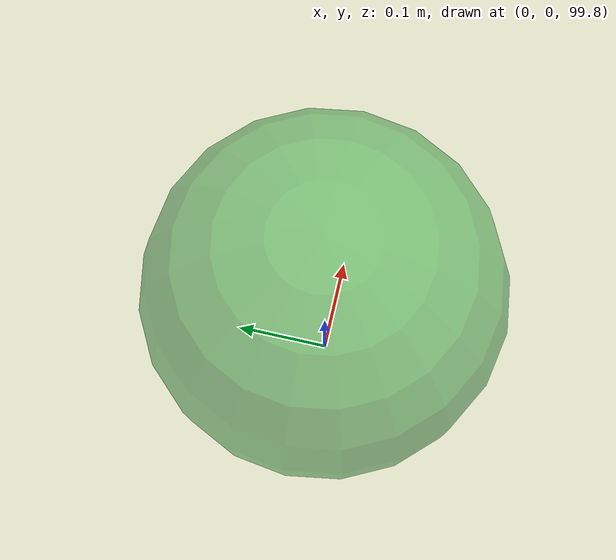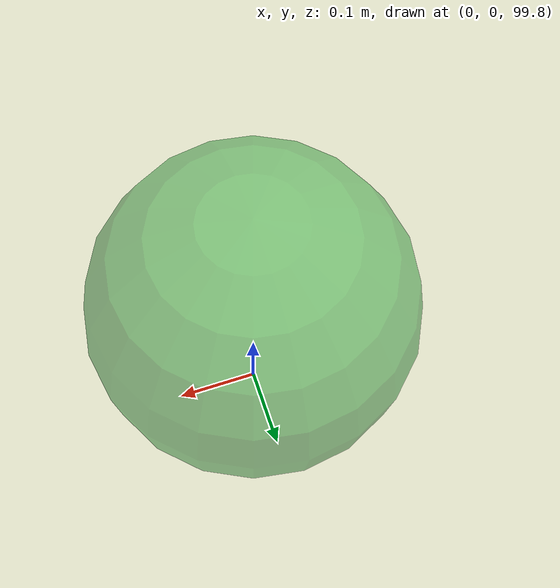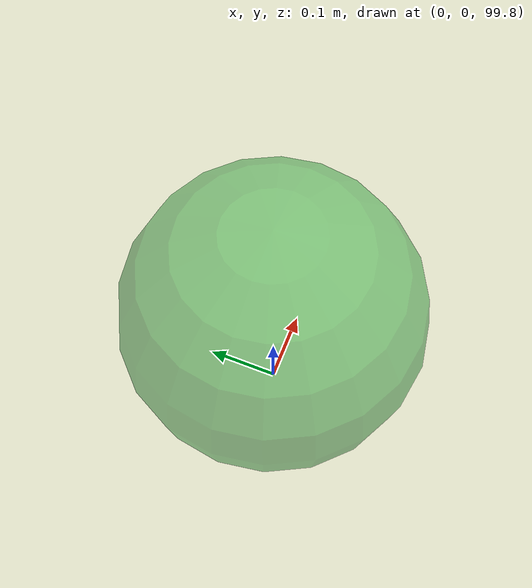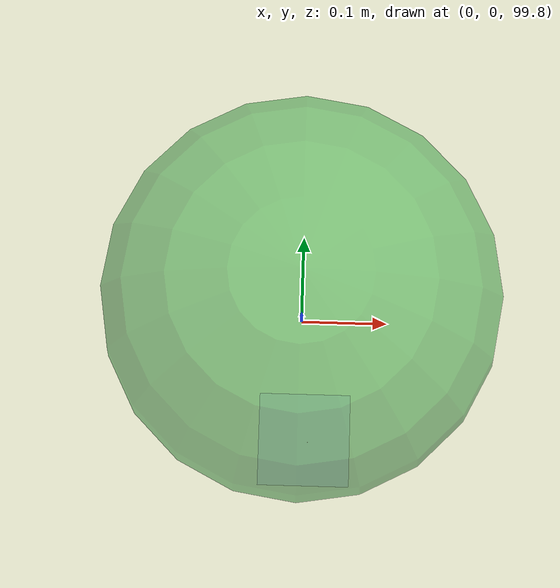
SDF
<sdf version="1.4">
 <world name="default">
  <include><uri>model://sun</uri><pose>0.0 -2 2 0.0 0.0 0.0</pose></include>
  <include>
   <uri>model://ground_plane</uri>
   <name>ground_plane</name>
   <pose>0.0 0.0 -0.001 0.0 0.0 0.0</pose>
  </include>
  <model name="wall_front">
   <static>true</static>
   <pose>0.40788 -0.041111 0.594525 0 0 0.452176</pose>
   <link name="link">
    <collision name="collision_wall_front">
     <geometry><box><size>0.01235 0.05025 0.07711</size></box></geometry>
    </collision>
   </link>
  </model>
  <model name="wall_right">
   <static>true</static>
   <pose>0.541546 -0.091734 0.595376 0 0 0.459033</pose>
   <link name="link">
    <collision name="collision_wall_right">
     <geometry><box><size>0.11107 0.009947 0.07782</size></box></geometry>
    </collision>
   </link>
  </model>
  <model name="wall_left">
   <static>true</static>
   <pose>0.452638 0.088268 0.594525 0 0 0.452176</pose>
   <link name="link">
    <collision name="collision_wall_left">
     <geometry><box><size>0.11107 0.009947 0.07782</size></box></geometry>
    </collision>
   </link>
  </model>
  <model name="wall_back">
   <static>true</static>
   <pose>0.590812 0.04949 0.594494 0 0 0.484056</pose>
   <link name="link">
    <collision name="collision_wall_back">
     <geometry><box><size>0.01122 0.0689 0.07574</size></box></geometry>
    </collision>
   </link>
  </model>
  <model name="sphere_goal">
   <static>true</static>
   <pose>0.508768 -0.021325 0.669494 0 0 0</pose>
   <link name="link">
    <visual name="visual">
     <cast_shadows>false</cast_shadows>
     <geometry><sphere><radius>0.02</radius></sphere></geometry>
     <material>
      <script><uri>file://media/materials/scripts/gazebo.material</uri><name>Gazebo/Red</name></script>
     </material>
    </visual>
   </link>
  </model>
  <model name="sphere_rad_1">
   <static>true</static>
   <pose>0 0 100 0 0 0</pose>
   <link name="link">
    <visual name="visual">
     <cast_shadows>false</cast_shadows>
     <transparency>0.5</transparency>
     <geometry><sphere><radius>0.005</radius></sphere></geometry>
     <material>
      <script><uri>file://media/materials/scripts/gazebo.material</uri><name>Gazebo/Green</name></script>
     </material>
    </visual>
   </link>
  </model>
  <model name="sphere_rad_2">
   <static>true</static>
   <pose>0 0 100 0 0 0</pose>
   <link name="link">
    <visual name="visual">
     <cast_shadows>false</cast_shadows>
     <transparency>0.5</transparency>
     <geometry><sphere><radius>0.01</radius></sphere></geometry>
     <material>
      <script><uri>file://media/materials/scripts/gazebo.material</uri><name>Gazebo/Green</name></script>
     </material>
    </visual>
   </link>
  </model>
  <model name="sphere_rad_3">
   <static>true</static>
   <pose>0 0 100 0 0 0</pose>
   <link name="link">
    <visual name="visual">
     <cast_shadows>false</cast_shadows>
     <transparency>0.5</transparency>
     <geometry><sphere><radius>0.015</radius></sphere></geometry>
     <material>
      <script><uri>file://media/materials/scripts/gazebo.material</uri><name>Gazebo/Green</name></script>
     </material>
    </visual>
   </link>
  </model>
  <model name="sphere_rad_4">
   <static>true</static>
   <pose>0 0 100 0 0 0</pose>
   <link name="link">
    <visual name="visual">
     <cast_shadows>false</cast_shadows>
     <transparency>0.5</transparency>
     <geometry><sphere><radius>0.02</radius></sphere></geometry>
     <material>
      <script><uri>file://media/materials/scripts/gazebo.material</uri><name>Gazebo/Green</name></script>
     </material>
    </visual>
   </link>
  </model>
  <model name="sphere_rad_5">
   <static>true</static>
   <pose>0 0 100 0 0 0</pose>
   <link name="link">
    <visual name="visual">
     <cast_shadows>false</cast_shadows>
     <transparency>0.5</transparency>
     <geometry><sphere><radius>0.025</radius></sphere></geometry>
     <material>
      <script><uri>file://media/materials/scripts/gazebo.material</uri><name>Gazebo/Green</name></script>
     </material>
    </visual>
   </link>
  </model>
  <model name="sphere_rad_6">
   <static>true</static>
   <pose>0 0 100 0 0 0</pose>
   <link name="link">
    <visual name="visual">
     <cast_shadows>false</cast_shadows>
     <transparency>0.5</transparency>
     <geometry><sphere><radius>0.03</radius></sphere></geometry>
     <material>
      <script><uri>file://media/materials/scripts/gazebo.material</uri><name>Gazebo/Green</name></script>
     </material>
    </visual>
   </link>
  </model>
  <model name="sphere_rad_7">
   <static>true</static>
   <pose>0 0 100 0 0 0</pose>
   <link name="link">
    <visual name="visual">
     <cast_shadows>false</cast_shadows>
     <transparency>0.5</transparency>
     <geometry><sphere><radius>0.035</radius></sphere></geometry>
     <material>
      <script><uri>file://media/materials/scripts/gazebo.material</uri><name>Gazebo/Green</name></script>
     </material>
    </visual>
   </link>
  </model>
  <model name="sphere_rad_8">
   <static>true</static>
   <pose>0 0 100 0 0 0</pose>
   <link name="link">
    <visual name="visual">
     <cast_shadows>false</cast_shadows>
     <transparency>0.5</transparency>
     <geometry><sphere><radius>0.04</radius></sphere></geometry>
     <material>
      <script><uri>file://media/materials/scripts/gazebo.material</uri><name>Gazebo/Green</name></script>
     </material>
    </visual>
   </link>
  </model>
  <model name="sphere_rad_9">
   <static>true</static>
   <pose>0 0 100 0 0 0</pose>
   <link name="link">
    <visual name="visual">
     <cast_shadows>false</cast_shadows>
     <transparency>0.5</transparency>
     <geometry><sphere><radius>0.045</radius></sphere></geometry>
     <material>
      <script><uri>file://media/materials/scripts/gazebo.material</uri><name>Gazebo/Green</name></script>
     </material>
    </visual>
   </link>
  </model>
  <model name="sphere_rad_10">
   <static>true</static>
   <pose>0 0 100 0 0 0</pose>
   <link name="link">
    <visual name="visual">
     <cast_shadows>false</cast_shadows>
     <transparency>0.5</transparency>
     <geometry><sphere><radius>0.05</radius></sphere></geometry>
     <material>
      <script><uri>file://media/materials/scripts/gazebo.material</uri><name>Gazebo/Green</name></script>
     </material>
    </visual>
   </link>
  </model>
  <model name="sphere_rad_11">
   <static>true</static>
   <pose>0 0 100 0 0 0</pose>
   <link name="link">
    <visual name="visual">
     <cast_shadows>false</cast_shadows>
     <transparency>0.5</transparency>
     <geometry><sphere><radius>0.055</radius></sphere></geometry>
     <material>
      <script><uri>file://media/materials/scripts/gazebo.material</uri><name>Gazebo/Green</name></script>
     </material>
    </visual>
   </link>
  </model>
  <model name="sphere_rad_12">
   <static>true</static>
   <pose>0 0 100 0 0 0</pose>
   <link name="link">
    <visual name="visual">
     <cast_shadows>false</cast_shadows>
     <transparency>0.5</transparency>
     <geometry><sphere><radius>0.06</radius></sphere></geometry>
     <material>
      <script><uri>file://media/materials/scripts/gazebo.material</uri><name>Gazebo/Green</name></script>
     </material>
    </visual>
   </link>
  </model>
  <model name="sphere_rad_13">
   <static>true</static>
   <pose>0 0 100 0 0 0</pose>
   <link name="link">
    <visual name="visual">
     <cast_shadows>false</cast_shadows>
     <transparency>0.5</transparency>
     <geometry><sphere><radius>0.065</radius></sphere></geometry>
     <material>
      <script><uri>file://media/materials/scripts/gazebo.material</uri><name>Gazebo/Green</name></script>
     </material>
    </visual>
   </link>
  </model>
  <model name="sphere_rad_14">
   <static>true</static>
   <pose>0 0 100 0 0 0</pose>
   <link name="link">
    <visual name="visual">
     <cast_shadows>false</cast_shadows>
     <transparency>0.5</transparency>
     <geometry><sphere><radius>0.07</radius></sphere></geometry>
     <material>
      <script><uri>file://media/materials/scripts/gazebo.material</uri><name>Gazebo/Green</name></script>
     </material>
    </visual>
   </link>
  </model>
  <model name="sphere_rad_15">
   <static>true</static>
   <pose>0 0 100 0 0 0</pose>
   <link name="link">
    <visual name="visual">
     <cast_shadows>false</cast_shadows>
     <transparency>0.5</transparency>
     <geometry><sphere><radius>0.075</radius></sphere></geometry>
     <material>
      <script><uri>file://media/materials/scripts/gazebo.material</uri><name>Gazebo/Green</name></script>
     </material>
    </visual>
   </link>
  </model>
  <model name="sphere_rad_16">
   <static>true</static>
   <pose>0 0 100 0 0 0</pose>
   <link name="link">
    <visual name="visual">
     <cast_shadows>false</cast_shadows>
     <transparency>0.5</transparency>
     <geometry><sphere><radius>0.08</radius></sphere></geometry>
     <material>
      <script><uri>file://media/materials/scripts/gazebo.material</uri><name>Gazebo/Green</name></script>
     </material>
    </visual>
   </link>
  </model>
  <model name="sphere_rad_17">
   <static>true</static>
   <pose>0 0 100 0 0 0</pose>
   <link name="link">
    <visual name="visual">
     <cast_shadows>false</cast_shadows>
     <transparency>0.5</transparency>
     <geometry><sphere><radius>0.085</radius></sphere></geometry>
     <material>
      <script><uri>file://media/materials/scripts/gazebo.material</uri><name>Gazebo/Green</name></script>
     </material>
    </visual>
   </link>
  </model>
  <model name="sphere_rad_18">
   <static>true</static>
   <pose>0 0 100 0 0 0</pose>
   <link name="link">
    <visual name="visual">
     <cast_shadows>false</cast_shadows>
     <transparency>0.5</transparency>
     <geometry><sphere><radius>0.09</radius></sphere></geometry>
     <material>
      <script><uri>file://media/materials/scripts/gazebo.material</uri><name>Gazebo/Green</name></script>
     </material>
    </visual>
   </link>
  </model>
  <model name="sphere_rad_19">
   <static>true</static>
   <pose>0 0 100 0 0 0</pose>
   <link name="link">
    <visual name="visual">
     <cast_shadows>false</cast_shadows>
     <transparency>0.5</transparency>
     <geometry><sphere><radius>0.095</radius></sphere></geometry>
     <material>
      <script><uri>file://media/materials/scripts/gazebo.material</uri><name>Gazebo/Green</name></script>
     </material>
    </visual>
   </link>
  </model>
  <model name="sphere_rad_20">
   <static>true</static>
   <pose>0 0 100 0 0 0</pose>
   <link name="link">
    <visual name="visual">
     <cast_shadows>false</cast_shadows>
     <transparency>0.5</transparency>
     <geometry><sphere><radius>0.10</radius></sphere></geometry>
     <material>
      <script><uri>file://media/materials/scripts/gazebo.material</uri><name>Gazebo/Green</name></script>
     </material>
    </visual>
   </link>
  </model>
  <model name="sphere_rad_21">
   <static>true</static>
   <pose>0 0 100 0 0 0</pose>
   <link name="link">
    <visual name="visual">
     <cast_shadows>false</cast_shadows>
     <transparency>0.5</transparency>
     <geometry><sphere><radius>0.105</radius></sphere></geometry>
     <material>
      <script><uri>file://media/materials/scripts/gazebo.material</uri><name>Gazebo/Green</name></script>
     </material>
    </visual>
   </link>
  </model>
  <model name="sphere_rad_22">
   <static>true</static>
   <pose>0 0 100 0 0 0</pose>
   <link name="link">
    <visual name="visual">
     <cast_shadows>false</cast_shadows>
     <transparency>0.5</transparency>
     <geometry><sphere><radius>0.11</radius></sphere></geometry>
     <material>
      <script><uri>file://media/materials/scripts/gazebo.material</uri><name>Gazebo/Green</name></script>
     </material>
    </visual>
   </link>
  </model>
  <model name="sphere_rad_23">
   <static>true</static>
   <pose>0 0 100 0 0 0</pose>
   <link name="link">
    <visual name="visual">
     <cast_shadows>false</cast_shadows>
     <transparency>0.5</transparency>
     <geometry><sphere><radius>0.115</radius></sphere></geometry>
     <material>
      <script><uri>file://media/materials/scripts/gazebo.material</uri><name>Gazebo/Green</name></script>
     </material>
    </visual>
   </link>
  </model>
  <model name="sphere_rad_24">
   <static>true</static>
   <pose>0 0 100 0 0 0</pose>
   <link name="link">
    <visual name="visual">
     <cast_shadows>false</cast_shadows>
     <transparency>0.5</transparency>
     <geometry><sphere><radius>0.12</radius></sphere></geometry>
     <material>
      <script><uri>file://media/materials/scripts/gazebo.material</uri><name>Gazebo/Green</name></script>
     </material>
    </visual>
   </link>
  </model>
  <model name="sphere_rad_25">
   <static>true</static>
   <pose>0 0 100 0 0 0</pose>
   <link name="link">
    <visual name="visual">
     <cast_shadows>false</cast_shadows>
     <transparency>0.5</transparency>
     <geometry><sphere><radius>0.125</radius></sphere></geometry>
     <material>
      <script><uri>file://media/materials/scripts/gazebo.material</uri><name>Gazebo/Green</name></script>
     </material>
    </visual>
   </link>
  </model>
  <model name="sphere_rad_26">
   <static>true</static>
   <pose>0 0 100 0 0 0</pose>
   <link name="link">
    <visual name="visual">
     <cast_shadows>false</cast_shadows>
     <transparency>0.5</transparency>
     <geometry><sphere><radius>0.13</radius></sphere></geometry>
     <material>
      <script><uri>file://media/materials/scripts/gazebo.material</uri><name>Gazebo/Green</name></script>
     </material>
    </visual>
   </link>
  </model>
  <model name="sphere_rad_27">
   <static>true</static>
   <pose>0 0 100 0 0 0</pose>
   <link name="link">
    <visual name="visual">
     <cast_shadows>false</cast_shadows>
     <transparency>0.5</transparency>
     <geometry><sphere><radius>0.135</radius></sphere></geometry>
     <material>
      <script><uri>file://media/materials/scripts/gazebo.material</uri><name>Gazebo/Green</name></script>
     </material>
    </visual>
   </link>
  </model>
  <model name="sphere_rad_28">
   <static>true</static>
   <pose>0 0 100 0 0 0</pose>
   <link name="link">
    <visual name="visual">
     <cast_shadows>false</cast_shadows>
     <transparency>0.5</transparency>
     <geometry><sphere><radius>0.14</radius></sphere></geometry>
     <material>
      <script><uri>file://media/materials/scripts/gazebo.material</uri><name>Gazebo/Green</name></script>
     </material>
    </visual>
   </link>
  </model>
  <model name="sphere_rad_29">
   <static>true</static>
   <pose>0 0 100 0 0 0</pose>
   <link name="link">
    <visual name="visual">
     <cast_shadows>false</cast_shadows>
     <transparency>0.5</transparency>
     <geometry><sphere><radius>0.145</radius></sphere></geometry>
     <material>
      <script><uri>file://media/materials/scripts/gazebo.material</uri><name>Gazebo/Green</name></script>
     </material>
    </visual>
   </link>
  </model>
  <model name="sphere_rad_30">
   <static>true</static>
   <pose>0 0 100 0 0 0</pose>
   <link name="link">
    <visual name="visual">
     <cast_shadows>false</cast_shadows>
     <transparency>0.5</transparency>
     <geometry><sphere><radius>0.15</radius></sphere></geometry>
     <material>
      <script><uri>file://media/materials/scripts/gazebo.material</uri><name>Gazebo/Green</name></script>
     </material>
    </visual>
   </link>
  </model>
  <model name="sphere_rad_31">
   <static>true</static>
   <pose>0 0 100 0 0 0</pose>
   <link name="link">
    <visual name="visual">
     <cast_shadows>false</cast_shadows>
     <transparency>0.5</transparency>
     <geometry><sphere><radius>0.155</radius></sphere></geometry>
     <material>
      <script><uri>file://media/materials/scripts/gazebo.material</uri><name>Gazebo/Green</name></script>
     </material>
    </visual>
   </link>
  </model>
  <model name="sphere_rad_32">
   <static>true</static>
   <pose>0 0 100 0 0 0</pose>
   <link name="link">
    <visual name="visual">
     <cast_shadows>false</cast_shadows>
     <transparency>0.5</transparency>
     <geometry><sphere><radius>0.16</radius></sphere></geometry>
     <material>
      <script><uri>file://media/materials/scripts/gazebo.material</uri><name>Gazebo/Green</name></script>
     </material>
    </visual>
   </link>
  </model>
  <model name="sphere_rad_33">
   <static>true</static>
   <pose>0 0 100 0 0 0</pose>
   <link name="link">
    <visual name="visual">
     <cast_shadows>false</cast_shadows>
     <transparency>0.5</transparency>
     <geometry><sphere><radius>0.165</radius></sphere></geometry>
     <material>
      <script><uri>file://media/materials/scripts/gazebo.material</uri><name>Gazebo/Green</name></script>
     </material>
    </visual>
   </link>
  </model>
  <model name="sphere_rad_34">
   <static>true</static>
   <pose>0 0 100 0 0 0</pose>
   <link name="link">
    <visual name="visual">
     <cast_shadows>false</cast_shadows>
     <transparency>0.5</transparency>
     <geometry><sphere><radius>0.17</radius></sphere></geometry>
     <material>
      <script><uri>file://media/materials/scripts/gazebo.material</uri><name>Gazebo/Green</name></script>
     </material>
    </visual>
   </link>
  </model>
  <model name="sphere_rad_35">
   <static>true</static>
   <pose>0 0 100 0 0 0</pose>
   <link name="link">
    <visual name="visual">
     <cast_shadows>false</cast_shadows>
     <transparency>0.5</transparency>
     <geometry><sphere><radius>0.175</radius></sphere></geometry>
     <material>
      <script><uri>file://media/materials/scripts/gazebo.material</uri><name>Gazebo/Green</name></script>
     </material>
    </visual>
   </link>
  </model>
  <model name="sphere_rad_36">
   <static>true</static>
   <pose>0 0 100 0 0 0</pose>
   <link name="link">
    <visual name="visual">
     <cast_shadows>false</cast_shadows>
     <transparency>0.5</transparency>
     <geometry><sphere><radius>0.18</radius></sphere></geometry>
     <material>
      <script><uri>file://media/materials/scripts/gazebo.material</uri><name>Gazebo/Green</name></script>
     </material>
    </visual>
   </link>
  </model>
  <model name="sphere_rad_37">
   <static>true</static>
   <pose>0 0 100 0 0 0</pose>
   <link name="link">
    <visual name="visual">
     <cast_shadows>false</cast_shadows>
     <transparency>0.5</transparency>
     <geometry><sphere><radius>0.185</radius></sphere></geometry>
     <material>
      <script><uri>file://media/materials/scripts/gazebo.material</uri><name>Gazebo/Green</name></script>
     </material>
    </visual>
   </link>
  </model>
  <model name="sphere_rad_38">
   <static>true</static>
   <pose>0 0 100 0 0 0</pose>
   <link name="link">
    <visual name="visual">
     <cast_shadows>false</cast_shadows>
     <transparency>0.5</transparency>
     <geometry><sphere><radius>0.19</radius></sphere></geometry>
     <material>
      <script><uri>file://media/materials/scripts/gazebo.material</uri><name>Gazebo/Green</name></script>
     </material>
    </visual>
   </link>
  </model>
  <model name="sphere_rad_39">
   <static>true</static>
   <pose>0 0 100 0 0 0</pose>
   <link name="link">
    <visual name="visual">
     <cast_shadows>false</cast_shadows>
     <transparency>0.5</transparency>
     <geometry><sphere><radius>0.195</radius></sphere></geometry>
     <material>
      <script><uri>file://media/materials/scripts/gazebo.material</uri><name>Gazebo/Green</name></script>
     </material>
    </visual>
   </link>
  </model>
  <model name="sphere_rad_40">
   <static>true</static>
   <pose>0 0 100 0 0 0</pose>
   <link name="link">
    <visual name="visual">
     <cast_shadows>false</cast_shadows>
     <transparency>0.5</transparency>
     <geometry><sphere><radius>0.20</radius></sphere></geometry>
     <material>
      <script><uri>file://media/materials/scripts/gazebo.material</uri><name>Gazebo/Green</name></script>
     </material>
    </visual>
   </link>
  </model>
 </world>
</sdf>
